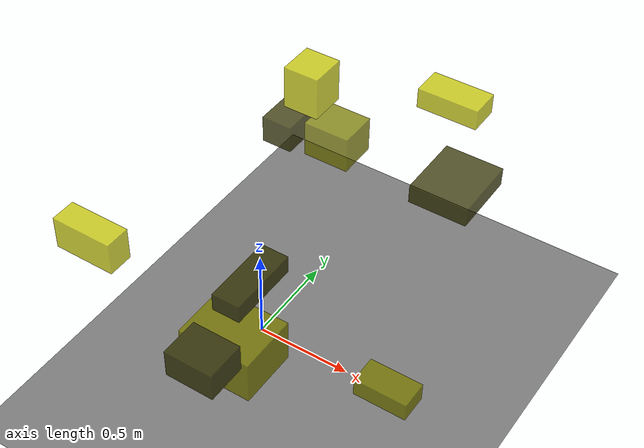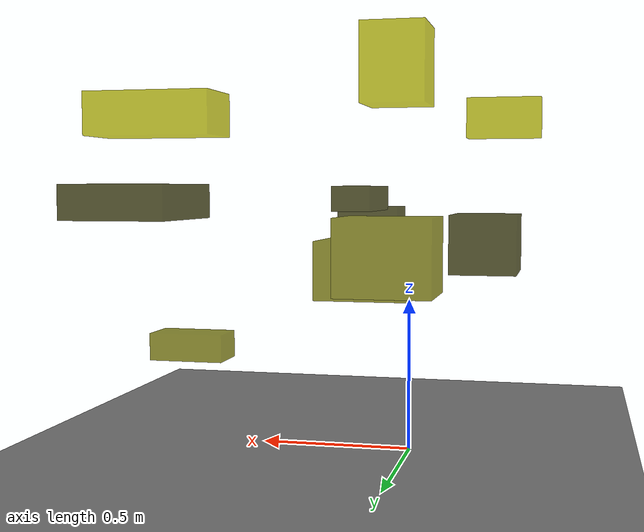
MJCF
<?xml version="1.0"?>
<mujoco model="obstacle_scene">
  <compiler angle="radian" coordinate="local"/>
  <option timestep="0.001" gravity="0 0 -9.81"/>

  <asset>
    <material name="obstacle_mat" rgba="0.8 0.8 0.0 0.8"/>
    <material name="ground_mat" rgba="0.5 0.5 0.5 1"/>
  </asset>

  <worldbody>
    <!-- Ground plane -->
    <geom name="ground" type="plane" size="3 3 0.1" material="ground_mat"/>

    <!-- Obstacles -->
    <body name="obstacle_0" pos="0.250952 -0.414595 0.829746">
      <geom name="obs_0" type="box" size="0.069919 0.183154 0.045689" rgba="0.2 0.2 0.0 0.8"/>
    </body>
    <body name="obstacle_1" pos="0.248578 -0.546349 0.555280">
      <geom name="obs_1" type="box" size="0.182845 0.150674 0.112334" rgba="0.5 0.5 0.0 0.8"/>
    </body>
    <body name="obstacle_2" pos="-0.250224 -0.817994 1.146242">
      <geom name="obs_2" type="box" size="0.145411 0.059570 0.078942" rgba="0.8 0.8 0.0 0.8"/>
    </body>
    <body name="obstacle_3" pos="-0.305688 0.687989 0.726704">
      <geom name="obs_3" type="box" size="0.083232 0.107498 0.074023" rgba="0.2 0.2 0.0 0.8"/>
    </body>
    <body name="obstacle_4" pos="-0.067954 0.771548 0.695145">
      <geom name="obs_4" type="box" size="0.124687 0.105602 0.099164" rgba="0.5 0.5 0.0 0.8"/>
    </body>
    <body name="obstacle_5" pos="0.477854 0.942619 1.046918">
      <geom name="obs_5" type="box" size="0.158978 0.079822 0.053557" rgba="0.8 0.8 0.0 0.8"/>
    </body>
    <body name="obstacle_6" pos="0.671611 0.638953 0.829446">
      <geom name="obs_6" type="box" size="0.150326 0.174438 0.049018" rgba="0.2 0.2 0.0 0.8"/>
    </body>
    <body name="obstacle_7" pos="0.835318 -0.192352 0.292290">
      <geom name="obs_7" type="box" size="0.136124 0.073724 0.048963" rgba="0.5 0.5 0.0 0.8"/>
    </body>
    <body name="obstacle_8" pos="-0.041259 0.491935 1.207781">
      <geom name="obs_8" type="box" size="0.089933 0.092773 0.110330" rgba="0.8 0.8 0.0 0.8"/>
    </body>
    <body name="obstacle_9" pos="0.285201 -0.807739 0.720560">
      <geom name="obs_9" type="box" size="0.121183 0.100090 0.071269" rgba="0.2 0.2 0.0 0.8"/>
    </body>
  </worldbody>
</mujoco>
